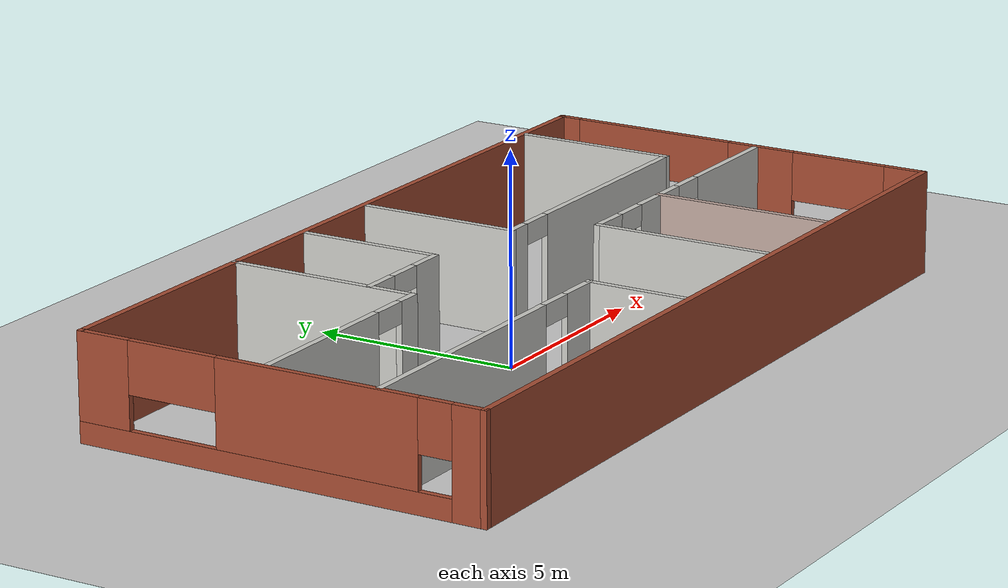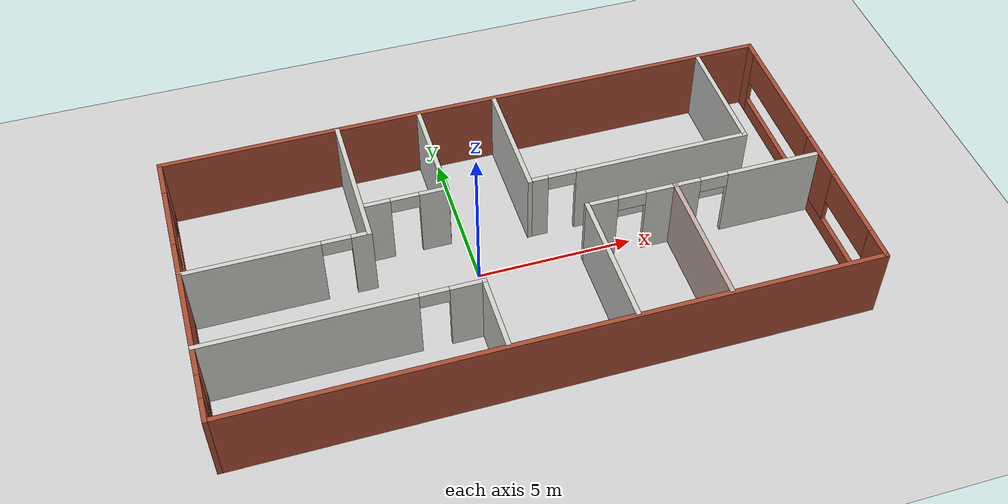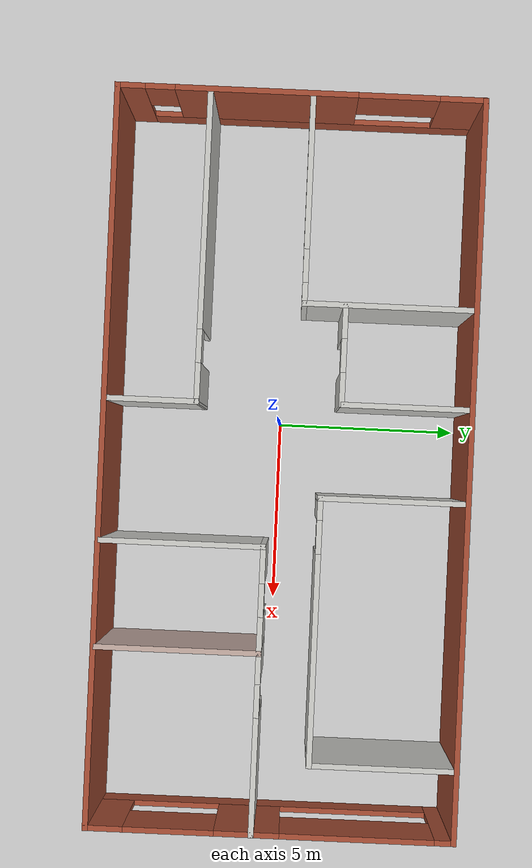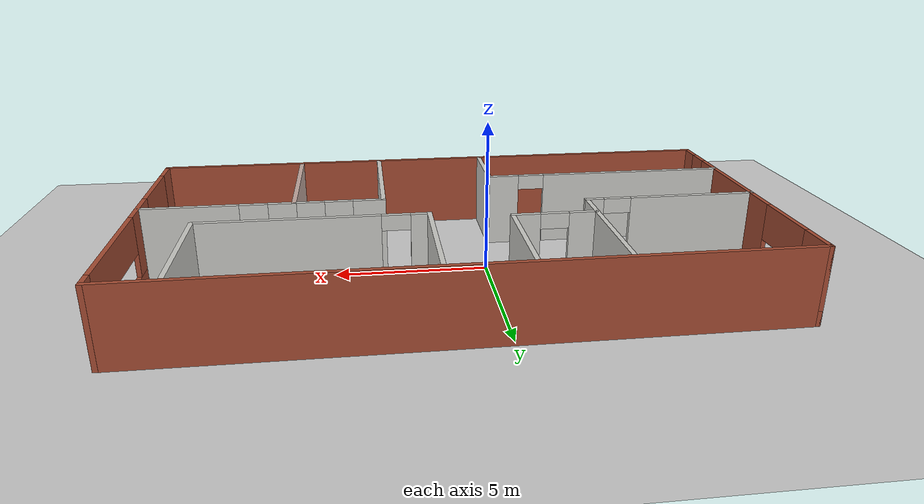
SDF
<sdf version="1.7">
 <world name="default">
  <light name="sun" type="directional">
   <pose>0 0 10 0 -0 0</pose>
   <diffuse>0.8 0.8 0.8 1</diffuse>
   <specular>0.2 0.2 0.2 1</specular>
   <attenuation>
    <range>1000</range>
    <constant>0.9</constant>
    <linear>0.01</linear>
    <quadratic>0.001</quadratic>
   </attenuation>
   <direction>-0.5 0.1 -0.9</direction>
   <spot><inner_angle>0</inner_angle><outer_angle>0</outer_angle><falloff>0</falloff></spot>
  </light>
  <model name="ground_plane">
   <static>1</static>
   <link name="link">
    <collision name="collision">
     <geometry><plane><normal>0 0 1</normal><size>100 100</size></plane></geometry>
     <surface><friction><ode><mu>100</mu><mu2>50</mu2></ode></friction></surface>
    </collision>
    <visual name="visual">
     <cast_shadows>0</cast_shadows>
     <geometry><plane><normal>0 0 1</normal><size>100 100</size></plane></geometry>
     <material>
      <script><uri>file://media/materials/scripts/gazebo.material</uri><name>Gazebo/Grey</name></script>
     </material>
    </visual>
   </link>
  </model>
  <gravity>0 0 -9.8</gravity>
  <magnetic_field>6e-06 2.3e-05 -4.2e-05</magnetic_field>
  <atmosphere type="adiabatic"/>
  <physics type="ode">
   <max_step_size>0.001</max_step_size>
   <real_time_factor>1</real_time_factor>
   <real_time_update_rate>1000</real_time_update_rate>
  </physics>
  <scene><ambient>0.4 0.4 0.4 1</ambient><background>0.7 0.7 0.7 1</background><shadows>1</shadows></scene>
  <spherical_coordinates>
   <surface_model>EARTH_WGS84</surface_model>
   <latitude_deg>0</latitude_deg>
   <longitude_deg>0</longitude_deg>
   <elevation>0</elevation>
   <heading_deg>0</heading_deg>
  </spherical_coordinates>
  <model name="house_unseen">
   <pose>1.12842 0.680413 0 0 -0 0</pose>
   <link name="Wall_0">
    <pose>-9.92926 -0.4625 0 0 -0 1.5708</pose>
    <visual name="Wall_0_Visual_0">
     <pose>-4.59452 0 1.25 0 -0 0</pose>
     <geometry><box><size>0.810953 0.15 2.5</size></box></geometry>
     <material>
      <script><uri>file://media/materials/scripts/gazebo.material</uri><name>Gazebo/Bricks</name></script>
      <ambient>0.760784 0.662745 0.627451 1</ambient>
     </material>
     <meta><layer>0</layer></meta>
    </visual>
    <collision name="Wall_0_Collision_0">
     <geometry><box><size>0.810953 0.15 2.5</size></box></geometry>
     <pose>-4.59452 0 1.25 0 -0 0</pose>
    </collision>
    <visual name="Wall_0_Visual_1">
     <pose>0.405476 0 0.25 0 -0 0</pose>
     <geometry><box><size>9.18905 0.15 0.5</size></box></geometry>
     <material>
      <script><uri>file://media/materials/scripts/gazebo.material</uri><name>Gazebo/Bricks</name></script>
      <ambient>0.760784 0.662745 0.627451 1</ambient>
     </material>
     <meta><layer>0</layer></meta>
    </visual>
    <collision name="Wall_0_Collision_1">
     <geometry><box><size>9.18905 0.15 0.5</size></box></geometry>
     <pose>0.405476 0 0.25 0 -0 0</pose>
    </collision>
    <visual name="Wall_0_Visual_2">
     <pose>-0.935692 0 1.5 0 -0 0</pose>
     <geometry><box><size>4.90671 0.15 2</size></box></geometry>
     <material>
      <script><uri>file://media/materials/scripts/gazebo.material</uri><name>Gazebo/Bricks</name></script>
      <ambient>0.760784 0.662745 0.627451 1</ambient>
     </material>
     <meta><layer>0</layer></meta>
    </visual>
    <collision name="Wall_0_Collision_2">
     <geometry><box><size>4.90671 0.15 2</size></box></geometry>
     <pose>-0.935692 0 1.5 0 -0 0</pose>
    </collision>
    <visual name="Wall_0_Visual_3">
     <pose>4.35102 0 1.5 0 -0 0</pose>
     <geometry><box><size>1.29796 0.15 2</size></box></geometry>
     <material>
      <script><uri>file://media/materials/scripts/gazebo.material</uri><name>Gazebo/Bricks</name></script>
      <ambient>0.760784 0.662745 0.627451 1</ambient>
     </material>
     <meta><layer>0</layer></meta>
    </visual>
    <collision name="Wall_0_Collision_3">
     <geometry><box><size>1.29796 0.15 2</size></box></geometry>
     <pose>4.35102 0 1.5 0 -0 0</pose>
    </collision>
    <visual name="Wall_0_Visual_4">
     <pose>-3.78905 0 1.9 0 -0 0</pose>
     <geometry><box><size>0.8 0.15 1.2</size></box></geometry>
     <material>
      <script><uri>file://media/materials/scripts/gazebo.material</uri><name>Gazebo/Bricks</name></script>
      <ambient>0.760784 0.662745 0.627451 1</ambient>
     </material>
     <meta><layer>0</layer></meta>
    </visual>
    <collision name="Wall_0_Collision_4">
     <geometry><box><size>0.8 0.15 1.2</size></box></geometry>
     <pose>-3.78905 0 1.9 0 -0 0</pose>
    </collision>
    <visual name="Wall_0_Visual_5">
     <pose>2.60985 0 1.9 0 -0 0</pose>
     <geometry><box><size>2.18438 0.15 1.2</size></box></geometry>
     <material>
      <script><uri>file://media/materials/scripts/gazebo.material</uri><name>Gazebo/Bricks</name></script>
      <ambient>0.760784 0.662745 0.627451 1</ambient>
     </material>
     <meta><layer>0</layer></meta>
    </visual>
    <collision name="Wall_0_Collision_5">
     <geometry><box><size>2.18438 0.15 1.2</size></box></geometry>
     <pose>2.60985 0 1.9 0 -0 0</pose>
    </collision>
   </link>
   <link name="Wall_1">
    <collision name="Wall_1_Collision">
     <geometry><box><size>20 0.15 2.5</size></box></geometry>
     <pose>0 0 1.25 0 -0 0</pose>
    </collision>
    <visual name="Wall_1_Visual">
     <pose>0 0 1.25 0 -0 0</pose>
     <geometry><box><size>20 0.15 2.5</size></box></geometry>
     <material>
      <script><uri>file://media/materials/scripts/gazebo.material</uri><name>Gazebo/Bricks</name></script>
      <ambient>0.760784 0.662745 0.627451 1</ambient>
     </material>
     <meta><layer>0</layer></meta>
    </visual>
    <pose>-0.004263 4.4625 0 0 -0 0</pose>
   </link>
   <link name="Wall_11">
    <collision name="Wall_11_Collision">
     <geometry><box><size>2.5 0.15 2.5</size></box></geometry>
     <pose>0 0 1.25 0 -0 0</pose>
    </collision>
    <visual name="Wall_11_Visual">
     <pose>0 0 1.25 0 -0 0</pose>
     <geometry><box><size>2.5 0.15 2.5</size></box></geometry>
     <material>
      <script><uri>file://media/materials/scripts/gazebo.material</uri><name>Gazebo/CeilingTiled</name></script>
      <ambient>0.760784 0.662745 0.627451 1</ambient>
     </material>
     <meta><layer>0</layer></meta>
    </visual>
    <pose>-1.57296 -4.09089 0 0 -0 -1.5708</pose>
   </link>
   <link name="Wall_13">
    <pose>7.50426 -0.957672 0 0 -0 3.14159</pose>
    <visual name="Wall_13_Visual_0">
     <pose>-0.898237 0 1.25 0 -0 0</pose>
     <geometry><box><size>3.20352 0.15 2.5</size></box></geometry>
     <material>
      <script><uri>file://media/materials/scripts/gazebo.material</uri><name>Gazebo/CeilingTiled</name></script>
      <ambient>0.760784 0.662745 0.627451 1</ambient>
     </material>
     <meta><layer>0</layer></meta>
    </visual>
    <collision name="Wall_13_Collision_0">
     <geometry><box><size>3.20352 0.15 2.5</size></box></geometry>
     <pose>-0.898237 0 1.25 0 -0 0</pose>
    </collision>
    <visual name="Wall_13_Visual_1">
     <pose>2.05176 0 1.25 0 -0 0</pose>
     <geometry><box><size>0.896475 0.15 2.5</size></box></geometry>
     <material>
      <script><uri>file://media/materials/scripts/gazebo.material</uri><name>Gazebo/CeilingTiled</name></script>
      <ambient>0.760784 0.662745 0.627451 1</ambient>
     </material>
     <meta><layer>0</layer></meta>
    </visual>
    <collision name="Wall_13_Collision_1">
     <geometry><box><size>0.896475 0.15 2.5</size></box></geometry>
     <pose>2.05176 0 1.25 0 -0 0</pose>
    </collision>
    <visual name="Wall_13_Visual_2">
     <pose>1.15352 0 2.25 0 -0 0</pose>
     <geometry><box><size>0.9 0.15 0.5</size></box></geometry>
     <material>
      <script><uri>file://media/materials/scripts/gazebo.material</uri><name>Gazebo/CeilingTiled</name></script>
      <ambient>0.760784 0.662745 0.627451 1</ambient>
     </material>
     <meta><layer>0</layer></meta>
    </visual>
    <collision name="Wall_13_Collision_2">
     <geometry><box><size>0.9 0.15 0.5</size></box></geometry>
     <pose>1.15352 0 2.25 0 -0 0</pose>
    </collision>
   </link>
   <link name="Wall_14">
    <collision name="Wall_14_Collision">
     <geometry><box><size>4.5 0.15 2.5</size></box></geometry>
     <pose>0 0 1.25 0 -0 0</pose>
    </collision>
    <visual name="Wall_14_Visual">
     <pose>0 0 1.25 0 -0 0</pose>
     <geometry><box><size>4.5 0.15 2.5</size></box></geometry>
     <material>
      <script><uri>file://media/materials/scripts/gazebo.material</uri><name>Gazebo/Grey</name></script>
      <ambient>0.760784 0.662745 0.627451 1</ambient>
     </material>
     <meta><layer>0</layer></meta>
    </visual>
    <pose>5.07926 -3.13267 0 0 -0 -1.5708</pose>
   </link>
   <link name="Wall_16">
    <pose>3.65426 -0.957672 0 0 -0 3.14159</pose>
    <visual name="Wall_16_Visual_0">
     <pose>-0.977315 0 1.25 0 -0 0</pose>
     <geometry><box><size>1.04537 0.15 2.5</size></box></geometry>
     <material>
      <script><uri>file://media/materials/scripts/gazebo.material</uri><name>Gazebo/CeilingTiled</name></script>
      <ambient>0.760784 0.662745 0.627451 1</ambient>
     </material>
     <meta><layer>0</layer></meta>
    </visual>
    <collision name="Wall_16_Collision_0">
     <geometry><box><size>1.04537 0.15 2.5</size></box></geometry>
     <pose>-0.977315 0 1.25 0 -0 0</pose>
    </collision>
    <visual name="Wall_16_Visual_1">
     <pose>0.972685 0 1.25 0 -0 0</pose>
     <geometry><box><size>1.05463 0.15 2.5</size></box></geometry>
     <material>
      <script><uri>file://media/materials/scripts/gazebo.material</uri><name>Gazebo/CeilingTiled</name></script>
      <ambient>0.760784 0.662745 0.627451 1</ambient>
     </material>
     <meta><layer>0</layer></meta>
    </visual>
    <collision name="Wall_16_Collision_1">
     <geometry><box><size>1.05463 0.15 2.5</size></box></geometry>
     <pose>0.972685 0 1.25 0 -0 0</pose>
    </collision>
    <visual name="Wall_16_Visual_2">
     <pose>-0.00463 0 2.25 0 -0 0</pose>
     <geometry><box><size>0.9 0.15 0.5</size></box></geometry>
     <material>
      <script><uri>file://media/materials/scripts/gazebo.material</uri><name>Gazebo/CeilingTiled</name></script>
      <ambient>0.760784 0.662745 0.627451 1</ambient>
     </material>
     <meta><layer>0</layer></meta>
    </visual>
    <collision name="Wall_16_Collision_2">
     <geometry><box><size>0.9 0.15 0.5</size></box></geometry>
     <pose>-0.00463 0 2.25 0 -0 0</pose>
    </collision>
   </link>
   <link name="Wall_17">
    <collision name="Wall_17_Collision">
     <geometry><box><size>4.5 0.15 2.5</size></box></geometry>
     <pose>0 0 1.25 0 -0 0</pose>
    </collision>
    <visual name="Wall_17_Visual">
     <pose>0 0 1.25 0 -0 0</pose>
     <geometry><box><size>4.5 0.15 2.5</size></box></geometry>
     <material>
      <script><uri>file://media/materials/scripts/gazebo.material</uri><name>Gazebo/CeilingTiled</name></script>
      <ambient>0.760784 0.662745 0.627451 1</ambient>
     </material>
     <meta><layer>0</layer></meta>
    </visual>
    <pose>2.22926 -3.13267 0 0 -0 -1.5708</pose>
   </link>
   <link name="Wall_2">
    <pose>9.92074 -0.4625 0 0 -0 -1.5708</pose>
    <visual name="Wall_2_Visual_0">
     <pose>-4.70481 0 1.25 0 -0 0</pose>
     <geometry><box><size>0.59039 0.15 2.5</size></box></geometry>
     <material>
      <script><uri>file://media/materials/scripts/gazebo.material</uri><name>Gazebo/Bricks</name></script>
      <ambient>0.760784 0.662745 0.627451 1</ambient>
     </material>
     <meta><layer>0</layer></meta>
    </visual>
    <collision name="Wall_2_Collision_0">
     <geometry><box><size>0.59039 0.15 2.5</size></box></geometry>
     <pose>-4.70481 0 1.25 0 -0 0</pose>
    </collision>
    <visual name="Wall_2_Visual_1">
     <pose>0.295195 0 0.25 0 -0 0</pose>
     <geometry><box><size>9.40961 0.15 0.5</size></box></geometry>
     <material>
      <script><uri>file://media/materials/scripts/gazebo.material</uri><name>Gazebo/Bricks</name></script>
      <ambient>0.760784 0.662745 0.627451 1</ambient>
     </material>
     <meta><layer>0</layer></meta>
    </visual>
    <collision name="Wall_2_Collision_1">
     <geometry><box><size>9.40961 0.15 0.5</size></box></geometry>
     <pose>0.295195 0 0.25 0 -0 0</pose>
    </collision>
    <visual name="Wall_2_Visual_2">
     <pose>0.620362 0 1.5 0 -0 0</pose>
     <geometry><box><size>1.75341 0.15 2</size></box></geometry>
     <material>
      <script><uri>file://media/materials/scripts/gazebo.material</uri><name>Gazebo/Bricks</name></script>
      <ambient>0.760784 0.662745 0.627451 1</ambient>
     </material>
     <meta><layer>0</layer></meta>
    </visual>
    <collision name="Wall_2_Collision_2">
     <geometry><box><size>1.75341 0.15 2</size></box></geometry>
     <pose>0.620362 0 1.5 0 -0 0</pose>
    </collision>
    <visual name="Wall_2_Visual_3">
     <pose>4.46378 0 1.5 0 -0 0</pose>
     <geometry><box><size>1.07245 0.15 2</size></box></geometry>
     <material>
      <script><uri>file://media/materials/scripts/gazebo.material</uri><name>Gazebo/Bricks</name></script>
      <ambient>0.760784 0.662745 0.627451 1</ambient>
     </material>
     <meta><layer>0</layer></meta>
    </visual>
    <collision name="Wall_2_Collision_3">
     <geometry><box><size>1.07245 0.15 2</size></box></geometry>
     <pose>4.46378 0 1.5 0 -0 0</pose>
    </collision>
    <visual name="Wall_2_Visual_4">
     <pose>-2.33298 0 1.9 0 -0 0</pose>
     <geometry><box><size>4.15327 0.15 1.2</size></box></geometry>
     <material>
      <script><uri>file://media/materials/scripts/gazebo.material</uri><name>Gazebo/Bricks</name></script>
      <ambient>0.760784 0.662745 0.627451 1</ambient>
     </material>
     <meta><layer>0</layer></meta>
    </visual>
    <collision name="Wall_2_Collision_4">
     <geometry><box><size>4.15327 0.15 1.2</size></box></geometry>
     <pose>-2.33298 0 1.9 0 -0 0</pose>
    </collision>
    <visual name="Wall_2_Visual_5">
     <pose>2.71231 0 1.9 0 -0 0</pose>
     <geometry><box><size>2.43049 0.15 1.2</size></box></geometry>
     <material>
      <script><uri>file://media/materials/scripts/gazebo.material</uri><name>Gazebo/Bricks</name></script>
      <ambient>0.760784 0.662745 0.627451 1</ambient>
     </material>
     <meta><layer>0</layer></meta>
    </visual>
    <collision name="Wall_2_Collision_5">
     <geometry><box><size>2.43049 0.15 1.2</size></box></geometry>
     <pose>2.71231 0 1.9 0 -0 0</pose>
    </collision>
   </link>
   <link name="Wall_3">
    <collision name="Wall_3_Collision">
     <geometry><box><size>20 0.15 2.5</size></box></geometry>
     <pose>0 0 1.25 0 -0 0</pose>
    </collision>
    <visual name="Wall_3_Visual">
     <pose>0 0 1.25 0 -0 0</pose>
     <geometry><box><size>20 0.15 2.5</size></box></geometry>
     <material>
      <script><uri>file://media/materials/scripts/gazebo.material</uri><name>Gazebo/Bricks</name></script>
      <ambient>0.760784 0.662745 0.627451 1</ambient>
     </material>
     <meta><layer>0</layer></meta>
    </visual>
    <pose>-0.004263 -5.3875 0 0 -0 3.14159</pose>
   </link>
   <link name="Wall_5">
    <collision name="Wall_5_Collision">
     <geometry><box><size>4.75 0.15 2.5</size></box></geometry>
     <pose>0 0 1.25 0 -0 0</pose>
    </collision>
    <visual name="Wall_5_Visual">
     <pose>0 0 1.25 0 -0 0</pose>
     <geometry><box><size>4.75 0.15 2.5</size></box></geometry>
     <material>
      <script><uri>file://media/materials/scripts/gazebo.material</uri><name>Gazebo/CeilingTiled</name></script>
      <ambient>0.760784 0.662745 0.627451 1</ambient>
     </material>
     <meta><layer>0</layer></meta>
    </visual>
    <pose>-4.31926 2.1525 0 0 -0 -1.5708</pose>
   </link>
   <link name="Wall_6">
    <pose>-7.11926 -0.1475 0 0 -0 3.14159</pose>
    <visual name="Wall_6_Visual_0">
     <pose>-2.56004 0 1.25 0 -0 0</pose>
     <geometry><box><size>0.629912 0.15 2.5</size></box></geometry>
     <material>
      <script><uri>file://media/materials/scripts/gazebo.material</uri><name>Gazebo/CeilingTiled</name></script>
      <ambient>0.760784 0.662745 0.627451 1</ambient>
     </material>
     <meta><layer>0</layer></meta>
    </visual>
    <collision name="Wall_6_Collision_0">
     <geometry><box><size>0.629912 0.15 2.5</size></box></geometry>
     <pose>-2.56004 0 1.25 0 -0 0</pose>
    </collision>
    <visual name="Wall_6_Visual_1">
     <pose>0.764956 0 1.25 0 -0 0</pose>
     <geometry><box><size>4.22009 0.15 2.5</size></box></geometry>
     <material>
      <script><uri>file://media/materials/scripts/gazebo.material</uri><name>Gazebo/CeilingTiled</name></script>
      <ambient>0.760784 0.662745 0.627451 1</ambient>
     </material>
     <meta><layer>0</layer></meta>
    </visual>
    <collision name="Wall_6_Collision_1">
     <geometry><box><size>4.22009 0.15 2.5</size></box></geometry>
     <pose>0.764956 0 1.25 0 -0 0</pose>
    </collision>
    <visual name="Wall_6_Visual_2">
     <pose>-1.79509 0 2.25 0 -0 0</pose>
     <geometry><box><size>0.9 0.15 0.5</size></box></geometry>
     <material>
      <script><uri>file://media/materials/scripts/gazebo.material</uri><name>Gazebo/CeilingTiled</name></script>
      <ambient>0.760784 0.662745 0.627451 1</ambient>
     </material>
     <meta><layer>0</layer></meta>
    </visual>
    <collision name="Wall_6_Collision_2">
     <geometry><box><size>0.9 0.15 0.5</size></box></geometry>
     <pose>-1.79509 0 2.25 0 -0 0</pose>
    </collision>
   </link>
   <link name="Wall_8">
    <pose>-5.74796 -2.90512 0 0 -0 -0.00258</pose>
    <visual name="Wall_8_Visual_0">
     <pose>-1.00745 0 1.25 0 -0 0</pose>
     <geometry><box><size>6.4851 0.15 2.5</size></box></geometry>
     <material>
      <script><uri>file://media/materials/scripts/gazebo.material</uri><name>Gazebo/CeilingTiled</name></script>
      <ambient>0.760784 0.662745 0.627451 1</ambient>
     </material>
     <meta><layer>0</layer></meta>
    </visual>
    <collision name="Wall_8_Collision_0">
     <geometry><box><size>6.4851 0.15 2.5</size></box></geometry>
     <pose>-1.00745 0 1.25 0 -0 0</pose>
    </collision>
    <visual name="Wall_8_Visual_1">
     <pose>3.69255 0 1.25 0 -0 0</pose>
     <geometry><box><size>1.1149 0.15 2.5</size></box></geometry>
     <material>
      <script><uri>file://media/materials/scripts/gazebo.material</uri><name>Gazebo/CeilingTiled</name></script>
      <ambient>0.760784 0.662745 0.627451 1</ambient>
     </material>
     <meta><layer>0</layer></meta>
    </visual>
    <collision name="Wall_8_Collision_1">
     <geometry><box><size>1.1149 0.15 2.5</size></box></geometry>
     <pose>3.69255 0 1.25 0 -0 0</pose>
    </collision>
    <visual name="Wall_8_Visual_2">
     <pose>2.6851 0 2.25 0 -0 0</pose>
     <geometry><box><size>0.9 0.15 0.5</size></box></geometry>
     <material>
      <script><uri>file://media/materials/scripts/gazebo.material</uri><name>Gazebo/CeilingTiled</name></script>
      <ambient>0.760784 0.662745 0.627451 1</ambient>
     </material>
     <meta><layer>0</layer></meta>
    </visual>
    <collision name="Wall_8_Collision_2">
     <geometry><box><size>0.9 0.15 0.5</size></box></geometry>
     <pose>2.6851 0 2.25 0 -0 0</pose>
    </collision>
   </link>
   <static>1</static>
  </model>
  <model name="house_unseen_v2">
   <pose>2.99515 3.11002 0 0 -0 0</pose>
   <link name="Wall_0">
    <collision name="Wall_0_Collision">
     <geometry><box><size>4 0.15 2.5</size></box></geometry>
     <pose>0 0 1.25 0 -0 0</pose>
    </collision>
    <visual name="Wall_0_Visual">
     <pose>0 0 1.25 0 -0 0</pose>
     <geometry><box><size>4 0.15 2.5</size></box></geometry>
     <material>
      <script><uri>file://media/materials/scripts/gazebo.material</uri><name>Gazebo/CeilingTiled</name></script>
      <ambient>1 1 1 1</ambient>
     </material>
     <meta><layer>0</layer></meta>
    </visual>
    <pose>-1.00503 -0.00575 0 0 -0 -1.5708</pose>
   </link>
   <link name="Wall_3">
    <collision name="Wall_3_Collision">
     <geometry><box><size>3.5 0.15 2.5</size></box></geometry>
     <pose>0 0 1.25 0 -0 0</pose>
    </collision>
    <visual name="Wall_3_Visual">
     <pose>0 0 1.25 0 -0 0</pose>
     <geometry><box><size>3.5 0.15 2.5</size></box></geometry>
     <material>
      <script><uri>file://media/materials/scripts/gazebo.material</uri><name>Gazebo/CeilingTiled</name></script>
      <ambient>1 1 1 1</ambient>
     </material>
     <meta><layer>0</layer></meta>
    </visual>
    <pose>-3.52467 0.254128 0 0 -0 1.5708</pose>
   </link>
   <link name="Wall_5">
    <pose>-4.84097 -1.4682 0 0 -0 0</pose>
    <visual name="Wall_5_Visual_0">
     <pose>-0.911744 0 1.25 0 -0 0</pose>
     <geometry><box><size>0.926512 0.15 2.5</size></box></geometry>
     <material>
      <script><uri>file://media/materials/scripts/gazebo.material</uri><name>Gazebo/CeilingTiled</name></script>
      <ambient>1 1 1 1</ambient>
     </material>
     <meta><layer>0</layer></meta>
    </visual>
    <collision name="Wall_5_Collision_0">
     <geometry><box><size>0.926512 0.15 2.5</size></box></geometry>
     <pose>-0.911744 0 1.25 0 -0 0</pose>
    </collision>
    <visual name="Wall_5_Visual_1">
     <pose>0.913256 0 1.25 0 -0 0</pose>
     <geometry><box><size>0.923488 0.15 2.5</size></box></geometry>
     <material>
      <script><uri>file://media/materials/scripts/gazebo.material</uri><name>Gazebo/CeilingTiled</name></script>
      <ambient>1 1 1 1</ambient>
     </material>
     <meta><layer>0</layer></meta>
    </visual>
    <collision name="Wall_5_Collision_1">
     <geometry><box><size>0.923488 0.15 2.5</size></box></geometry>
     <pose>0.913256 0 1.25 0 -0 0</pose>
    </collision>
    <visual name="Wall_5_Visual_2">
     <pose>0.001512 0 2.25 0 -0 0</pose>
     <geometry><box><size>0.9 0.15 0.5</size></box></geometry>
     <material>
      <script><uri>file://media/materials/scripts/gazebo.material</uri><name>Gazebo/CeilingTiled</name></script>
      <ambient>1 1 1 1</ambient>
     </material>
     <meta><layer>0</layer></meta>
    </visual>
    <collision name="Wall_5_Collision_2">
     <geometry><box><size>0.9 0.15 0.5</size></box></geometry>
     <pose>0.001512 0 2.25 0 -0 0</pose>
    </collision>
   </link>
   <link name="Wall_7">
    <pose>2.59097 -1.91925 0 0 -0 0</pose>
    <visual name="Wall_7_Visual_0">
     <pose>-3.31472 0 1.25 0 -0 0</pose>
     <geometry><box><size>0.62057 0.15 2.5</size></box></geometry>
     <material>
      <script><uri>file://media/materials/scripts/gazebo.material</uri><name>Gazebo/CeilingTiled</name></script>
      <ambient>1 1 1 1</ambient>
     </material>
     <meta><layer>0</layer></meta>
    </visual>
    <collision name="Wall_7_Collision_0">
     <geometry><box><size>0.62057 0.15 2.5</size></box></geometry>
     <pose>-3.31472 0 1.25 0 -0 0</pose>
    </collision>
    <visual name="Wall_7_Visual_1">
     <pose>0.760285 0 1.25 0 -0 0</pose>
     <geometry><box><size>5.72943 0.15 2.5</size></box></geometry>
     <material>
      <script><uri>file://media/materials/scripts/gazebo.material</uri><name>Gazebo/CeilingTiled</name></script>
      <ambient>1 1 1 1</ambient>
     </material>
     <meta><layer>0</layer></meta>
    </visual>
    <collision name="Wall_7_Collision_1">
     <geometry><box><size>5.72943 0.15 2.5</size></box></geometry>
     <pose>0.760285 0 1.25 0 -0 0</pose>
    </collision>
    <visual name="Wall_7_Visual_2">
     <pose>-2.55443 0 2.25 0 -0 0</pose>
     <geometry><box><size>0.9 0.15 0.5</size></box></geometry>
     <material>
      <script><uri>file://media/materials/scripts/gazebo.material</uri><name>Gazebo/CeilingTiled</name></script>
      <ambient>1 1 1 1</ambient>
     </material>
     <meta><layer>0</layer></meta>
    </visual>
    <collision name="Wall_7_Collision_2">
     <geometry><box><size>0.9 0.15 0.5</size></box></geometry>
     <pose>-2.55443 0 2.25 0 -0 0</pose>
    </collision>
   </link>
   <link name="Wall_9">
    <collision name="Wall_9_Collision">
     <geometry><box><size>4 0.15 2.5</size></box></geometry>
     <pose>0 0 1.25 0 -0 0</pose>
    </collision>
    <visual name="Wall_9_Visual">
     <pose>0 0 1.25 0 -0 0</pose>
     <geometry><box><size>4 0.15 2.5</size></box></geometry>
     <material>
      <script><uri>file://media/materials/scripts/gazebo.material</uri><name>Gazebo/CeilingTiled</name></script>
      <ambient>1 1 1 1</ambient>
     </material>
     <meta><layer>0</layer></meta>
    </visual>
    <pose>6.14097 0.00575 0 0 -0 1.5708</pose>
   </link>
   <static>1</static>
  </model>
 </world>
</sdf>
